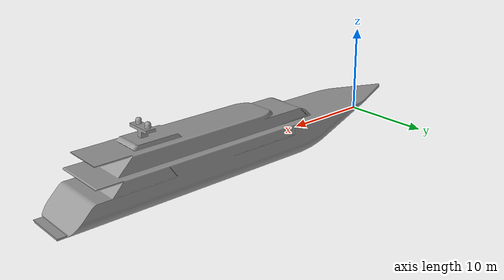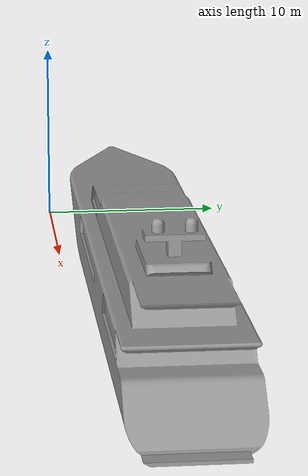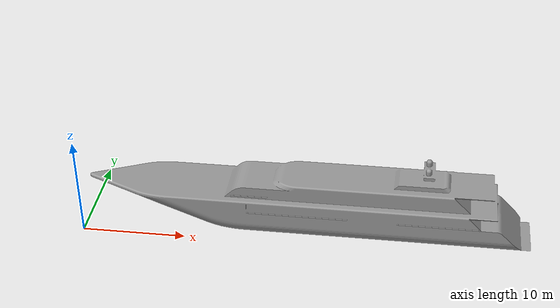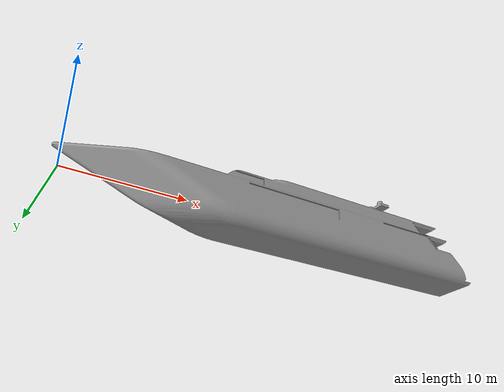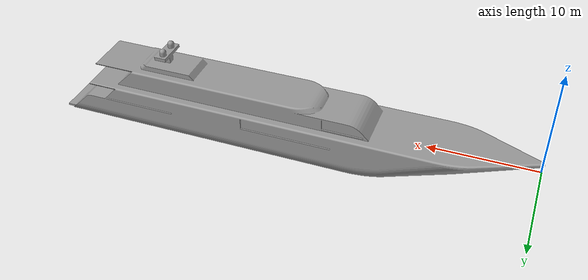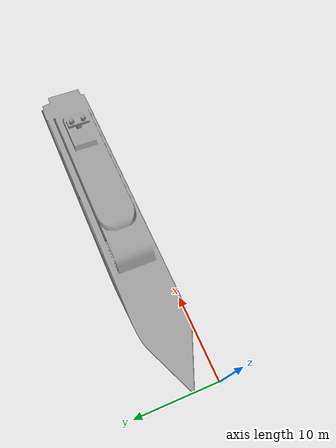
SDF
<?xml version="1.0" ?>
<sdf version="1.5">
  <model name="yacht_v2">
    <link name="link">
      <inertial>
        <!-- Mass determined based on buoyancy geometry so object
             floats at mid-point of sphere -->
        <mass>20</mass>
        <!-- Mark only - based on cylinder -->
        <inertia>
          <ixx>1.0</ixx>
          <ixy>0</ixy>
          <ixz>0</ixz>
          <iyy>1.0</iyy>
          <iyz>0</iyz>
          <izz>0.1</izz>
        </inertia>
      </inertial>
      <collision name="collision">
        <geometry>
          <box>
            <size>3 3 3.5</size>
            <scale>0.01 0.01 0.01</scale>
          </box>
        </geometry>
        <surface>
          <friction>
            <ode>
              <mu>100</mu>
              <mu2>50</mu2>
            </ode>
          </friction>
        </surface>
      </collision>
      <visual name="visual">
        <pose>0 0 0 0 0 0</pose>
        <geometry>
          <mesh>
            <uri>model://yacht_v2/meshes/Yacht v2.STL</uri>
            <scale>0.01 0.01 0.01</scale>
          </mesh>
        </geometry>
        <material>
          <script>
            <uri>file://media/materials/scripts/gazebo.material</uri>
            <name>Gazebo/PR2/Grey3</name>
          </script>
        </material>
      </visual>
    </link>
    <plugin name="motion_planning_plugin_x" filename="libmotion_planning_plugin_x.so"/>
  </model>
</sdf>
